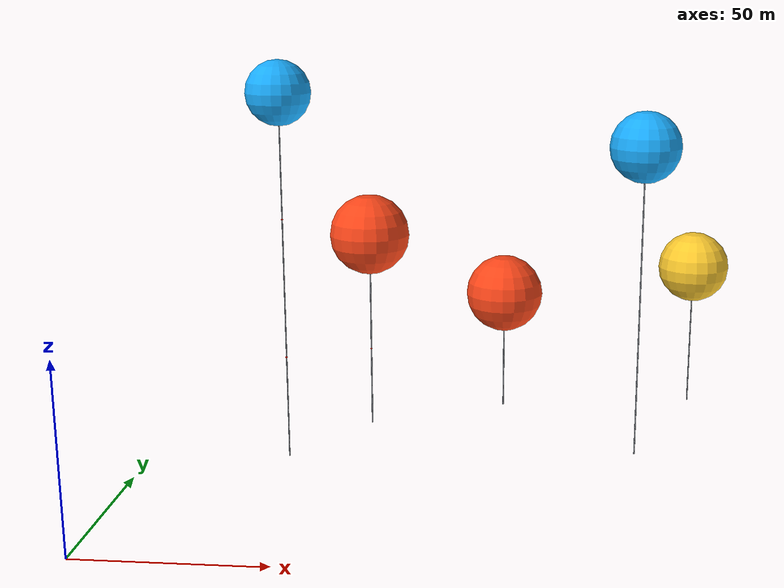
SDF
<sdf version="1.7">
 <world name="hiveflight_world">
  <include><uri>model://sun</uri><pose>80 120 180 0.35 -0.28 2.4</pose></include>
  <model name="nofly_zones">
   <static>true</static>
   <link name="zone_0">
    <pose>60 100 0 0 0 0</pose>
    <visual name="pole_0">
     <pose>0 0 30 0 0 0</pose>
     <geometry><cylinder><radius>0.22</radius><length>60</length></cylinder></geometry>
     <material>
      <ambient>0.42 0.44 0.47 1</ambient>
      <diffuse>0.55 0.57 0.6 1</diffuse>
      <specular>0.6 0.6 0.6 1</specular>
     </material>
    </visual>
    <visual name="bubble_0">
     <pose>0 0 60 0 0 0</pose>
     <geometry><sphere><radius>12</radius></sphere></geometry>
     <material>
      <ambient>1 0.22 0.1 1</ambient>
      <diffuse>1 0.28 0.1 1</diffuse>
      <emissive>0.9 0.16 0.05 1</emissive>
      <lighting>false</lighting>
      <transparency>0.72</transparency>
     </material>
    </visual>
    <visual name="core_0">
     <pose>0 0 60 0 0 0</pose>
     <geometry><sphere><radius>1.1</radius></sphere></geometry>
     <material>
      <ambient>1 0.45 0.18 1</ambient>
      <diffuse>1 0.5 0.2 1</diffuse>
      <emissive>1 0.35 0.1 1</emissive>
     </material>
    </visual>
    <visual name="tip_0">
     <pose>0 0 60.5 0 0 0</pose>
     <geometry><sphere><radius>0.5</radius></sphere></geometry>
     <material><ambient>1 0.12 0.05 1</ambient><emissive>1 0.18 0.05 1</emissive></material>
    </visual>
    <visual name="mark_0_a">
     <pose>0 0 24 0 0 0</pose>
     <geometry><sphere><radius>0.3</radius></sphere></geometry>
     <material><ambient>1 0.1 0.04 1</ambient><emissive>1 0.14 0.04 1</emissive></material>
    </visual>
    <visual name="mark_0_b">
     <pose>0 0 48 0 0 0</pose>
     <geometry><sphere><radius>0.3</radius></sphere></geometry>
     <material><ambient>1 0.1 0.04 1</ambient><emissive>1 0.14 0.04 1</emissive></material>
    </visual>
   </link>
   <link name="zone_3">
    <pose>40 70 0 0 0 0</pose>
    <visual name="pole_3">
     <pose>0 0 52.5 0 0 0</pose>
     <geometry><cylinder><radius>0.18</radius><length>105</length></cylinder></geometry>
     <material><ambient>0.45 0.43 0.46 1</ambient><diffuse>0.55 0.57 0.6 1</diffuse></material>
    </visual>
    <visual name="bubble_3">
     <pose>0 0 105 0 0 0</pose>
     <geometry><sphere><radius>9</radius></sphere></geometry>
     <material>
      <ambient>0.1 0.6 1 1</ambient>
      <diffuse>0.1 0.68 1 1</diffuse>
      <emissive>0.05 0.5 0.95 1</emissive>
      <lighting>false</lighting>
      <transparency>0.72</transparency>
     </material>
    </visual>
    <visual name="core_3">
     <pose>0 0 105 0 0 0</pose>
     <geometry><sphere><radius>0.9</radius></sphere></geometry>
     <material>
      <ambient>0.2 0.72 1 1</ambient>
      <diffuse>0.25 0.75 1 1</diffuse>
      <emissive>0.12 0.6 1 1</emissive>
     </material>
    </visual>
    <visual name="mark_3_a">
     <pose>0 0 30 0 0 0</pose>
     <geometry><sphere><radius>0.28</radius></sphere></geometry>
     <material><ambient>1 0.12 0.05 1</ambient><emissive>1 0.16 0.05 1</emissive></material>
    </visual>
    <visual name="mark_3_b">
     <pose>0 0 70 0 0 0</pose>
     <geometry><sphere><radius>0.28</radius></sphere></geometry>
     <material><ambient>1 0.12 0.05 1</ambient><emissive>1 0.16 0.05 1</emissive></material>
    </visual>
   </link>
   <link name="zone_1">
    <pose>140 80 0 0 0 0</pose>
    <visual name="pole_1">
     <pose>0 0 45 0 0 0</pose>
     <geometry><cylinder><radius>0.2</radius><length>90</length></cylinder></geometry>
     <material><ambient>0.42 0.44 0.47 1</ambient><diffuse>0.55 0.57 0.6 1</diffuse></material>
    </visual>
    <visual name="bubble_1">
     <pose>0 0 90 0 0 0</pose>
     <geometry><sphere><radius>10</radius></sphere></geometry>
     <material>
      <ambient>0.1 0.6 1 1</ambient>
      <diffuse>0.1 0.68 1 1</diffuse>
      <emissive>0.05 0.5 0.95 1</emissive>
      <lighting>false</lighting>
      <transparency>0.72</transparency>
     </material>
    </visual>
    <visual name="core_1">
     <pose>0 0 90 0 0 0</pose>
     <geometry><sphere><radius>1.0</radius></sphere></geometry>
     <material>
      <ambient>0.2 0.72 1 1</ambient>
      <diffuse>0.25 0.75 1 1</diffuse>
      <emissive>0.12 0.6 1 1</emissive>
     </material>
    </visual>
   </link>
   <link name="zone_2">
    <pose>100 120 0 0 0 0</pose>
    <visual name="pole_2">
     <pose>0 0 18.75 0 0 0</pose>
     <geometry><cylinder><radius>0.22</radius><length>37.5</length></cylinder></geometry>
     <material><ambient>0.42 0.44 0.47 1</ambient><diffuse>0.55 0.57 0.6 1</diffuse></material>
    </visual>
    <visual name="bubble_2">
     <pose>0 0 37.5 0 0 0</pose>
     <geometry><sphere><radius>12</radius></sphere></geometry>
     <material>
      <ambient>1 0.22 0.1 1</ambient>
      <diffuse>1 0.28 0.1 1</diffuse>
      <emissive>0.9 0.16 0.05 1</emissive>
      <lighting>false</lighting>
      <transparency>0.72</transparency>
     </material>
    </visual>
    <visual name="core_2">
     <pose>0 0 37.5 0 0 0</pose>
     <geometry><sphere><radius>0.9</radius></sphere></geometry>
     <material>
      <ambient>1 0.45 0.18 1</ambient>
      <diffuse>1 0.5 0.2 1</diffuse>
      <emissive>1 0.35 0.1 1</emissive>
     </material>
    </visual>
   </link>
   <link name="zone_4">
    <pose>160 130 0 0 0 0</pose>
    <visual name="pole_4">
     <pose>0 0 22.5 0 0 0</pose>
     <geometry><cylinder><radius>0.2</radius><length>45</length></cylinder></geometry>
     <material><ambient>0.42 0.44 0.47 1</ambient><diffuse>0.55 0.57 0.6 1</diffuse></material>
    </visual>
    <visual name="bubble_4">
     <pose>0 0 45 0 0 0</pose>
     <geometry><sphere><radius>11</radius></sphere></geometry>
     <material>
      <ambient>1 0.75 0.15 1</ambient>
      <diffuse>1 0.8 0.18 1</diffuse>
      <emissive>0.9 0.6 0.1 1</emissive>
      <lighting>false</lighting>
      <transparency>0.72</transparency>
     </material>
    </visual>
    <visual name="core_4">
     <pose>0 0 45 0 0 0</pose>
     <geometry><sphere><radius>1.0</radius></sphere></geometry>
     <material>
      <ambient>1 0.8 0.2 1</ambient>
      <diffuse>1 0.82 0.24 1</diffuse>
      <emissive>0.9 0.65 0.1 1</emissive>
     </material>
    </visual>
   </link>
  </model>
 </world>
</sdf>
